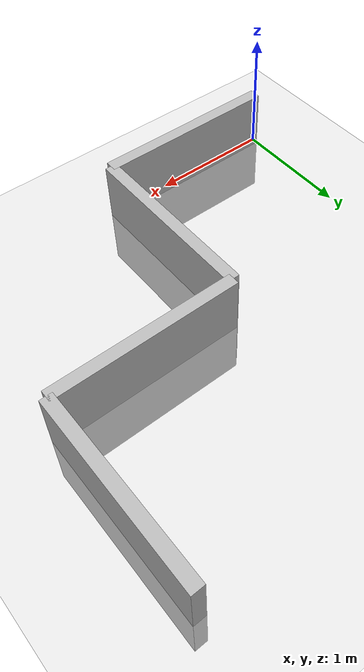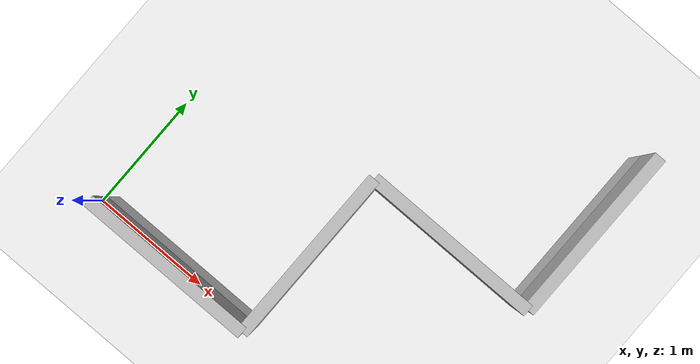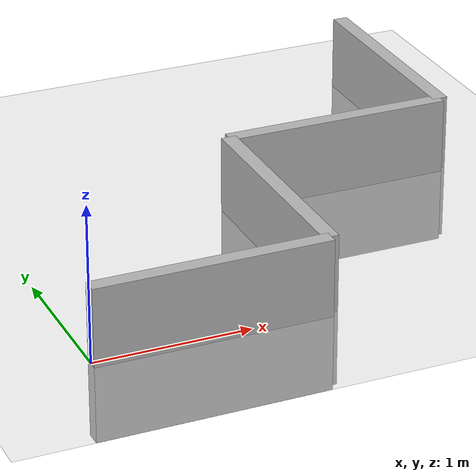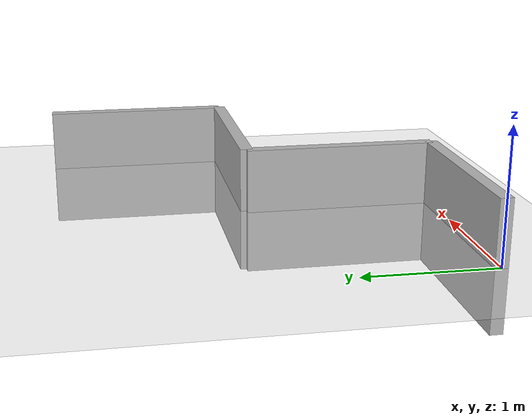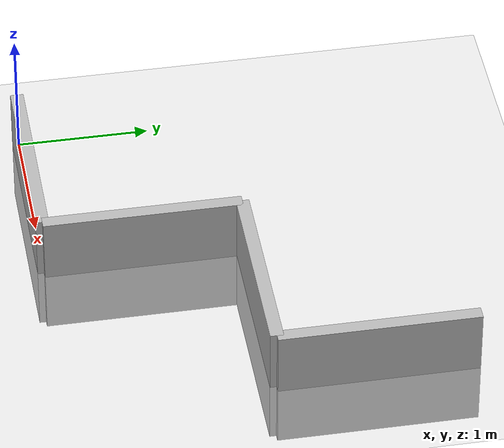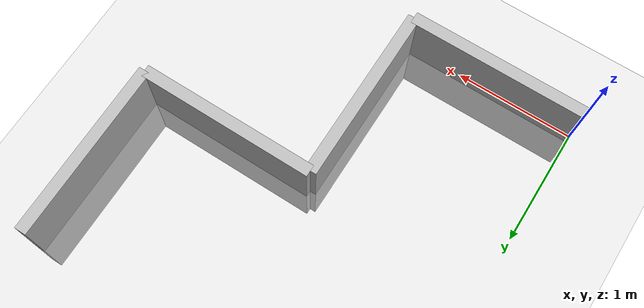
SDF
<?xml version="1.0" ?>
<sdf version="1.6">
  <world name="default">
    <include>
      <uri>model://ground_plane</uri>
    </include>
    <include>
      <uri>model://sun</uri>
    </include>

    <model name="wall_0">
      <static>true</static>
      <link name="link">
        <pose>0.75 0 0 0 0 0</pose>
        <collision name="collision">
          <geometry>
            <box>
              <size>1.5 0.1 1.0</size>
            </box>
          </geometry>
        </collision>
        <visual name="visual">
          <geometry>
            <box>
              <size>1.5 0.1 1.0</size>
            </box>
          </geometry>
        </visual>
      </link>
    </model>

    <model name="wall_1">
      <static>true</static>
      <link name="link">
        <pose>1.5 0.75 0 0 0 1.57</pose>
        <collision name="collision">
          <geometry>
            <box>
              <size>1.5 0.1 1.0</size>
            </box>
          </geometry>
        </collision>
        <visual name="visual">
          <geometry>
            <box>
              <size>1.5 0.1 1.0</size>
            </box>
          </geometry>
        </visual>
      </link>
    </model>

    <model name="wall_2">
      <static>true</static>
      <link name="link">
        <pose>2.25 1.5 0 0 0 0</pose>
        <collision name="collision">
          <geometry>
            <box>
              <size>1.5 0.1 1.0</size>
            </box>
          </geometry>
        </collision>
        <visual name="visual">
          <geometry>
            <box>
              <size>1.5 0.1 1.0</size>
            </box>
          </geometry>
        </visual>
      </link>
    </model>

    <model name="wall_3">
      <static>true</static>
      <link name="link">
        <pose>3.0 2.25 0 0 0 1.57</pose>
        <collision name="collision">
          <geometry>
            <box>
              <size>1.5 0.1 1.0</size>
            </box>
          </geometry>
        </collision>
        <visual name="visual">
          <geometry>
            <box>
              <size>1.5 0.1 1.0</size>
            </box>
          </geometry>
        </visual>
      </link>
    </model>

  </world>
</sdf>
